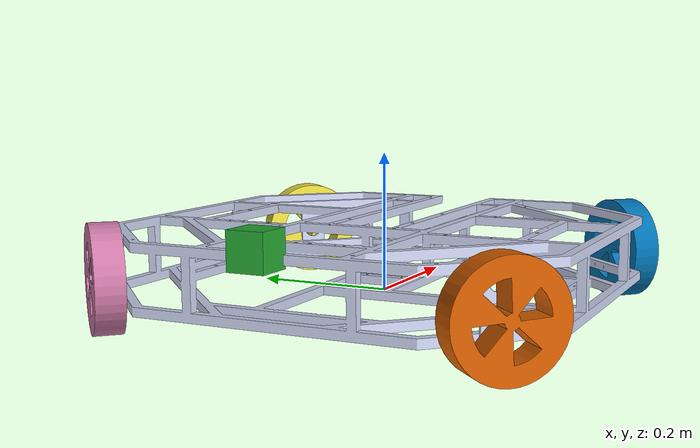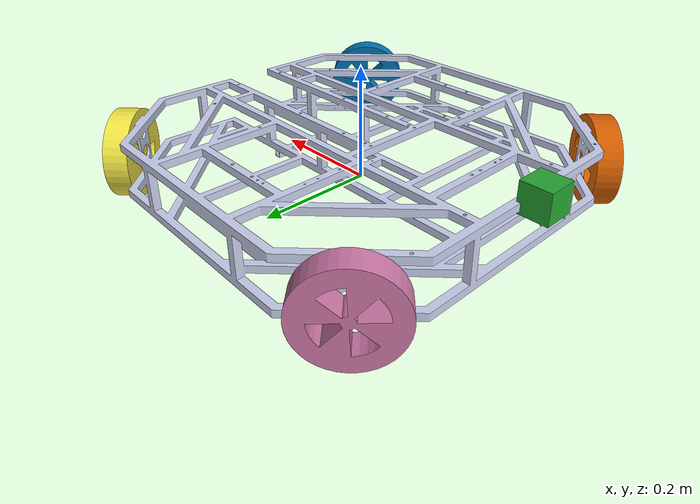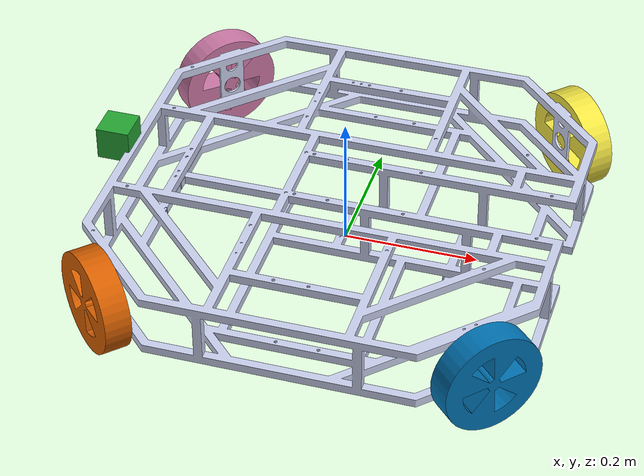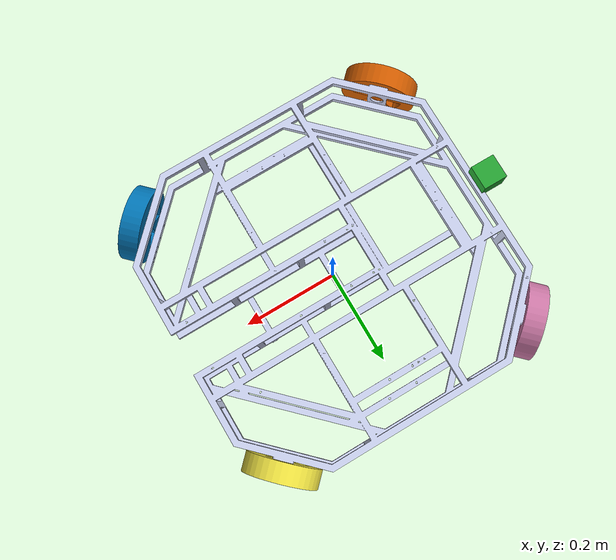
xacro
<?xml version="1.0"?>
<robot xmlns:xacro="http://www.ros.org/wiki/xacro" name="final">

	<xacro:include filename="$(find final_description)/xacro/gazebo.urdf.xacro"/>
	<xacro:include filename="$(find final_description)/xacro/wheel.urdf.xacro" />
	<xacro:include filename="$(find final_description)/xacro/camera.urdf.xacro" />

	<link name="origin_link"/>
	<link name="base_link">
	<inertial>
		<mass value="0.743904097826017"/>
		<inertia
			ixx="0.0128815665938208"
            ixy="-0.000108823075691167"
            ixz="1.09592346108527E-05"
            iyy="0.0153938926364957"
            iyz="2.60023505950379E-07"
            izz="0.0280566311336355"/>
	</inertial>
	<visual>
		<geometry>
			<mesh filename="package://final_description/meshes/base_link.STL" />
		</geometry>
		<material
            name="">
            <color
              rgba="0.792156862745098 0.819607843137255 0.933333333333333 1" />
        </material>

	</visual>
	<collision>
		<geometry>
			<mesh filename="package://final_description/meshes/base_link.STL" />
		</geometry>
	</collision>

	</link>

	<joint name="base_joint" type="fixed">
		<parent link="origin_link" />
		<child link="base_link" />
		<origin xyz="0 0 0.02"/>
	</joint>

	<xacro:omni_wheel wheel_prefix="front_right">
		<origin xyz="0.28084 0.28084 0.0212" rpy="1.5708 0 2.3563"/>
	</xacro:omni_wheel>
	<xacro:omni_wheel wheel_prefix="front_left">
		<origin xyz="0.28084 -0.28084 0.0212" rpy="1.5708 0 0.7854"/>
	</xacro:omni_wheel>
	<xacro:omni_wheel wheel_prefix="back_left">
		<origin xyz="-0.28084 -0.28084 0.0212" rpy="1.5708 0 -0.7854"/>
	</xacro:omni_wheel>
	<xacro:omni_wheel wheel_prefix="back_right">
		<origin xyz="-0.28084 0.28084 0.0212" rpy="-1.5708 0 0.7854"/>
	</xacro:omni_wheel>

  	<joint name="body_joint" type="fixed">
  		<parent link="base_link"/>
  		<child link="body_link"/>
  		<origin xyz="0 0 0.03" rpy="1.57 0 3.14"/>
  	</joint>

  	<link name="body_link">
      	<inertial>
      		<mass value="0.1" />
      		<origin xyz="0 0 0" />
      		<inertia 	ixx="0.000056443" ixy="0.0" ixz="0.0"
               			iyy="0.0012923047" iyz="0.0"
               			izz="0.000113232" />
    	</inertial>
  	</link>

</robot>

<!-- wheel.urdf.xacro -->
<robot xmlns:xacro="http://ros.org/wiki/xacro" name="husky_wheel">

	<xacro:macro name="omni_wheel" params="wheel_prefix *joint_pose">
		<link name="${wheel_prefix}_wheel_link">
			<inertial>
				<mass value="0.575037119313077" />
				<origin xyz="0 0 0" />
				<inertia  ixx="0.00467" ixy="0" ixz="0" iyy="0.00411" iyz="0" izz="0.00467" />
			</inertial>
			<visual>
				<origin xyz="0 0 0" rpy="0 0 0" />
				<geometry>
					<mesh filename="package://final_description/meshes/wheel_1.STL" />
				</geometry>
			</visual>
			<collision>
				<origin xyz="0 0 0" rpy="0 0 0" />
				<geometry>
					<mesh filename="package://final_description/meshes/wheel_1.STL" />
				</geometry>
				<surface>
					<bounce restitution_coefficient="0.0001" />
				</surface>
			</collision>
		</link>

		<gazebo reference="${wheel_prefix}_wheel_link">
			<mu1 value="0.20"/>
			<mu2 value="1.5"/>
			<kp value="10000000.0" />
			<kd value="10000.0" />
			<fdir1 value="0 0 1"/>
			<maxContacts value= "1"/>
		</gazebo>

		<joint name="${wheel_prefix}_wheel" type="continuous">
			<parent link="base_link"/>
			<child link="${wheel_prefix}_wheel_link"/>
			<xacro:insert_block name="joint_pose"/>
			<axis xyz="0 0 1" rpy="0 0 0" />
		</joint>

		<transmission name="${wheel_prefix}_wheel_trans" type="SimpleTransmission">
			<type>transmission_interface/SimpleTransmission</type>
			<actuator name="${wheel_prefix}_wheel_motor">
				<mechanicalReduction>1</mechanicalReduction>
			</actuator>
			<joint name="${wheel_prefix}_wheel">
				<hardwareInterface>hardware_interface/VelocityJointInterface</hardwareInterface>
			</joint>
		</transmission>

	</xacro:macro>
</robot>

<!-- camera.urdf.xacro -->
<robot xmlns:xacro="http://www.ros.org/wiki/xacro">

 <xacro:property name="cameraSize" value="0.05"/>
 <xacro:property name="cameraMass" value="0.1"/>

   <link name="camera">
     <collision>
          <origin xyz="0 0 0" rpy="0 0 3.14"/>
          <geometry>
              <box size="${cameraSize} ${cameraSize} ${cameraSize}"/>
          </geometry>
     </collision>

     <visual>
         <origin xyz="0 0 0" rpy="0 0 3.14"/>
         <geometry>
             <box size="${cameraSize} ${cameraSize} ${cameraSize}"/>
         </geometry>
         <material name="green"/>
     </visual>

     <inertial>
          <mass value="${cameraMass}" />
          <origin xyz="0 0 0" rpy="0 0 3.14"/>
          <box_inertia m="${cameraMass}" x="${cameraSize}" y="${cameraSize}" z="${cameraSize}" />
          <inertia ixx="1e-6" ixy="0" ixz="0" iyy="1e-6" iyz="0" izz="1e-6" />
     </inertial>
   </link>

   <joint name="camera_joint" type="fixed">
     <axis xyz="0 1 0" />
     <origin xyz="-0.35 0 0.09" rpy="0 0 3.14"/>
     <parent link="base_link"/>
     <child link="camera"/>
   </joint>

  <gazebo reference="camera">
    <material>Gazebo/Green</material>
    <sensor type="camera" name="camera1">
      <update_rate>30.0</update_rate>
      <camera name="head">
        <horizontal_fov>1.3962634</horizontal_fov>
        <image>
          <width>400</width>
          <height>400</height>
          <format>R8G8B8</format>
        </image>
        <clip>
          <near>0.02</near>
          <far>300</far>
        </clip>
      </camera>
      <plugin name="camera_controller" filename="libgazebo_ros_camera.so">
        <alwaysOn>true</alwaysOn>
        <updateRate>0.0</updateRate>
        <cameraName>final/camera1</cameraName>
        <imageTopicName>image_raw</imageTopicName>
        <cameraInfoTopicName>camera_info</cameraInfoTopicName>
        <frameName>camera</frameName>
        <hackBaseline>0.07</hackBaseline>
        <distortionK1>0.0</distortionK1>
        <distortionK2>0.0</distortionK2>
        <distortionK3>0.0</distortionK3>
        <distortionT1>0.0</distortionT1>
        <distortionT2>0.0</distortionT2>
      </plugin>
    </sensor>
  </gazebo>

</robot>
